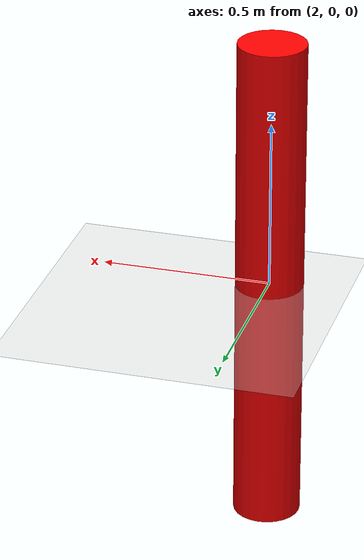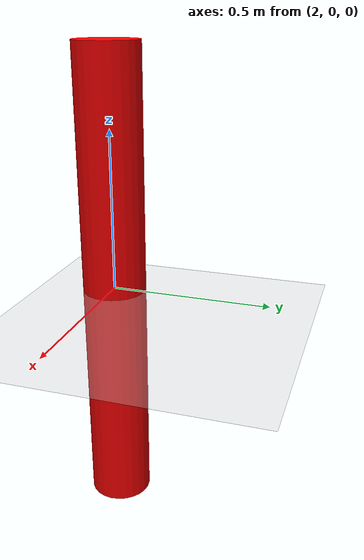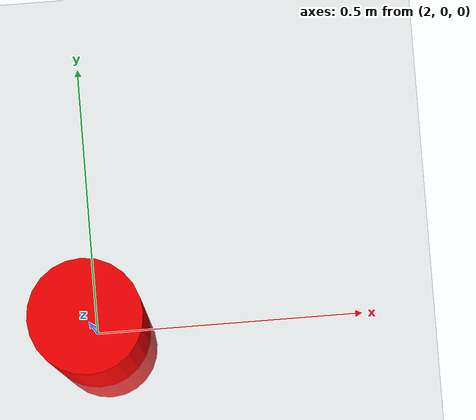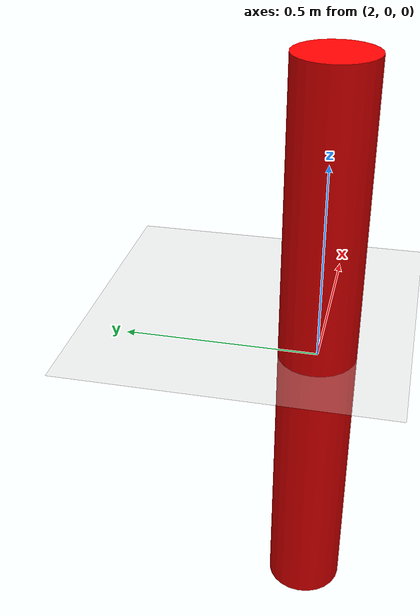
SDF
<sdf version='1.4'>
  <world name='default'>
    <!-- A global light source -->
    <include>
      <uri>model://sun</uri>
    </include>

    <!-- A ground plane -->
    <include>
      <uri>model://ground_plane</uri>
    </include>

    <physics type="ode">
      <real_time_update_rate>1000.0</real_time_update_rate>
      <max_step_size>0.001</max_step_size>
      <real_time_factor>1</real_time_factor>
      <ode>
        <solver>
          <type>quick</type>
          <iters>150</iters>
          <precon_iters>0</precon_iters>
          <sor>1.400000</sor>
          <use_dynamic_moi_rescaling>1</use_dynamic_moi_rescaling>
        </solver>
        <constraints>
          <cfm>0.00001</cfm>
          <erp>0.2</erp>
          <contact_max_correcting_vel>2000.000000</contact_max_correcting_vel>
          <contact_surface_layer>0.01000</contact_surface_layer>
        </constraints>
      </ode>
    </physics>

    <!-- Load world -->

    <!-- Load human -->
    <include>
      <uri>model://human_column</uri>
      <pose>2 0 0 0 0 0</pose>
    </include>

    <scene>
      <ambient>0.4 0.4 0.4 1</ambient>
      <background>0.7 0.7 0.7 1</background>
      <shadows>true</shadows>
    </scene>

    <gui fullscreen='0'>
      <camera name='user_camera'>
        <pose>0.8 0.0 12.0 0 1.5708 0</pose>
        <view_controller>orbit</view_controller>
      </camera>
    </gui>
  </world>
</sdf>

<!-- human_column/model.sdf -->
<sdf version='1.6'>
  <model name='human_column'>
    <link name='link_0'>
      <inertial>
        <mass>1</mass>
        <inertia>
          <ixx>0.145833</ixx>
          <ixy>0</ixy>
          <ixz>0</ixz>
          <iyy>0.145833</iyy>
          <iyz>0</iyz>
          <izz>0.125</izz>
        </inertia>
        <pose frame=''>0 0 0 0 -0 0</pose>
      </inertial>
      <pose frame=''>0 0 0 0 -0 0</pose>
      <gravity>0</gravity>
      <self_collide>0</self_collide>
      <kinematic>0</kinematic>
      <enable_wind>0</enable_wind>
      <visual name='visual'>
        <pose frame=''>0 0 0 0 -0 0</pose>
        <geometry>
          <cylinder>
            <radius>0.1</radius>
            <length>1.5</length>
          </cylinder>
        </geometry>
        <material>
          <lighting>1</lighting>
          <script>
            <uri>file://media/materials/scripts/gazebo.material</uri>
            <name>Gazebo/Grey</name>
          </script>
          <shader type='pixel'>
            <normal_map>__default__</normal_map>
          </shader>
          <ambient>1 0 0 1</ambient>
          <diffuse>1 0 0 1</diffuse>
          <specular>1 0 0 1</specular>
          <emissive>1 0 0 1</emissive>
        </material>
        <transparency>0</transparency>
        <cast_shadows>1</cast_shadows>
      </visual>
      <collision name='collision'>
        <laser_retro>0</laser_retro>
        <max_contacts>10</max_contacts>
        <pose frame=''>0 0 0 0 -0 0</pose>
        <geometry>
          <cylinder>
            <radius>0.1</radius>
            <length>1.5</length>
          </cylinder>
        </geometry>
        <surface>
          <friction>
            <ode>
              <mu>1</mu>
              <mu2>1</mu2>
              <fdir1>0 0 0</fdir1>
              <slip1>0</slip1>
              <slip2>0</slip2>
            </ode>
            <torsional>
              <coefficient>1</coefficient>
              <patch_radius>0</patch_radius>
              <surface_radius>0</surface_radius>
              <use_patch_radius>1</use_patch_radius>
              <ode>
                <slip>0</slip>
              </ode>
            </torsional>
          </friction>
          <bounce>
            <restitution_coefficient>0</restitution_coefficient>
            <threshold>1e+06</threshold>
          </bounce>
          <contact>
            <collide_without_contact>0</collide_without_contact>
            <collide_without_contact_bitmask>1</collide_without_contact_bitmask>
            <collide_bitmask>1</collide_bitmask>
            <ode>
              <soft_cfm>0</soft_cfm>
              <soft_erp>0.2</soft_erp>
              <kp>1e+13</kp>
              <kd>1</kd>
              <max_vel>0.01</max_vel>
              <min_depth>0</min_depth>
            </ode>
            <bullet>
              <split_impulse>1</split_impulse>
              <split_impulse_penetration_threshold>-0.01</split_impulse_penetration_threshold>
              <soft_cfm>0</soft_cfm>
              <soft_erp>0.2</soft_erp>
              <kp>1e+13</kp>
              <kd>1</kd>
            </bullet>
          </contact>
        </surface>
      </collision>
    </link>
    <static>0</static>
    <allow_auto_disable>1</allow_auto_disable>
  </model>
</sdf>
